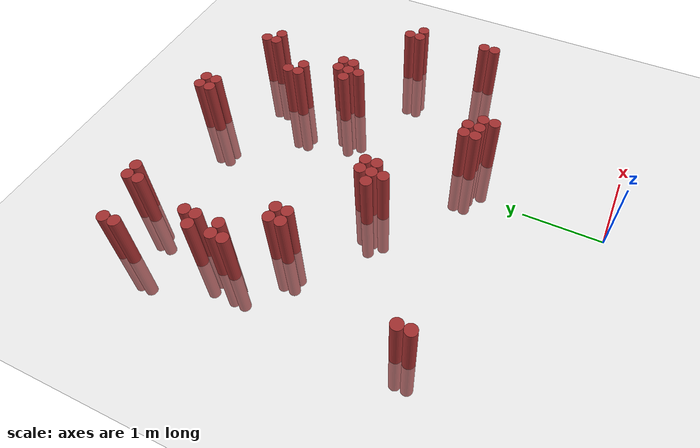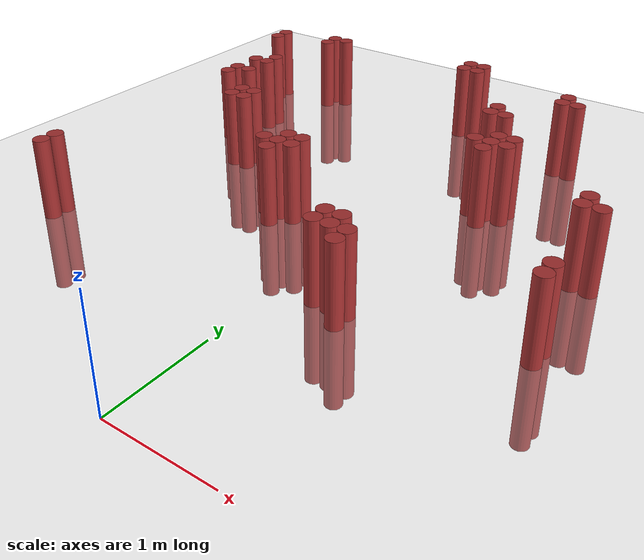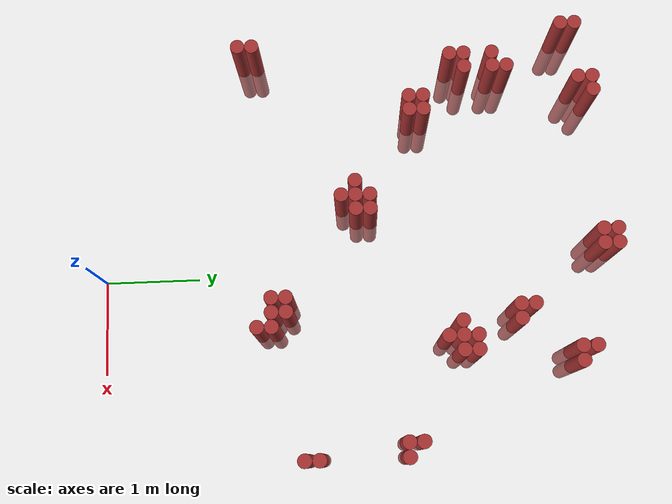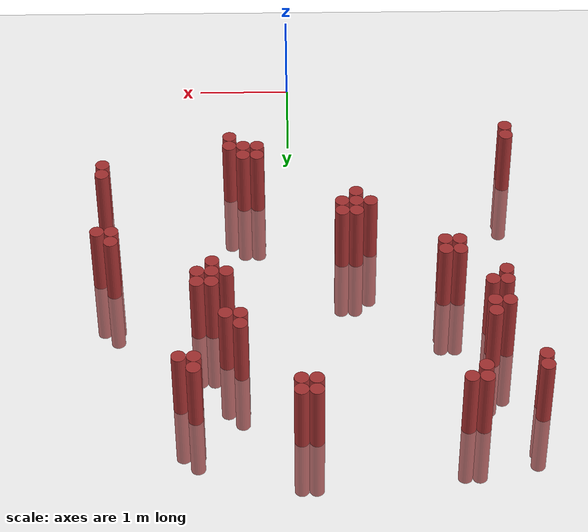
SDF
<sdf version="1.6">
 <world name="default">
  <model name="ground_plane">
   <static>1</static>
   <link name="link">
    <collision name="collision">
     <geometry><plane><normal>0 0 1</normal><size>100 100</size></plane></geometry>
     <surface><friction><ode><mu>100</mu><mu2>50</mu2></ode></friction></surface>
    </collision>
    <visual name="visual">
     <cast_shadows>0</cast_shadows>
     <geometry><plane><normal>0 0 1</normal><size>100 100</size></plane></geometry>
     <material>
      <script><uri>file://media/materials/scripts/gazebo.material</uri><name>Gazebo/Grey</name></script>
     </material>
    </visual>
   </link>
  </model>
  <model name="unit_cylinder_322">
   <static>1</static>
   <pose>-2.525000 4.975000 0.000000 0.000000 0.000000 0.000000</pose>
   <link name="link">
    <inertial>
     <mass>1</mass>
     <inertia><ixx>0.145833</ixx><ixy>0</ixy><ixz>0</ixz><iyy>0.145833</iyy><iyz>0</iyz><izz>0.125</izz></inertia>
    </inertial>
    <collision name="collision">
     <geometry><cylinder><radius>0.075000</radius><length>1.5</length></cylinder></geometry>
    </collision>
    <visual name="visual">
     <geometry><cylinder><radius>0.075000</radius><length>1.5</length></cylinder></geometry>
     <material>
      <ambient>0.648000 0.192000 0.192000 1</ambient>
      <diffuse>0.648000 0.192000 0.192000 1</diffuse>
     </material>
     <material>
      <script><name>Gazebo/Grey</name><uri>file://media/materials/scripts/gazebo.material</uri></script>
     </material>
    </visual>
   </link>
  </model>
  <model name="unit_cylinder_323">
   <static>1</static>
   <pose>-2.525000 5.125000 0.000000 0.000000 0.000000 0.000000</pose>
   <link name="link">
    <inertial>
     <mass>1</mass>
     <inertia><ixx>0.145833</ixx><ixy>0</ixy><ixz>0</ixz><iyy>0.145833</iyy><iyz>0</iyz><izz>0.125</izz></inertia>
    </inertial>
    <collision name="collision">
     <geometry><cylinder><radius>0.075000</radius><length>1.5</length></cylinder></geometry>
    </collision>
    <visual name="visual">
     <geometry><cylinder><radius>0.075000</radius><length>1.5</length></cylinder></geometry>
     <material>
      <ambient>0.648000 0.192000 0.192000 1</ambient>
      <diffuse>0.648000 0.192000 0.192000 1</diffuse>
     </material>
     <material>
      <script><name>Gazebo/Grey</name><uri>file://media/materials/scripts/gazebo.material</uri></script>
     </material>
    </visual>
   </link>
  </model>
  <model name="unit_cylinder_329">
   <static>1</static>
   <pose>-2.375000 1.525000 0.000000 0.000000 0.000000 0.000000</pose>
   <link name="link">
    <inertial>
     <mass>1</mass>
     <inertia><ixx>0.145833</ixx><ixy>0</ixy><ixz>0</ixz><iyy>0.145833</iyy><iyz>0</iyz><izz>0.125</izz></inertia>
    </inertial>
    <collision name="collision">
     <geometry><cylinder><radius>0.075000</radius><length>1.5</length></cylinder></geometry>
    </collision>
    <visual name="visual">
     <geometry><cylinder><radius>0.075000</radius><length>1.5</length></cylinder></geometry>
     <material>
      <ambient>0.648000 0.192000 0.192000 1</ambient>
      <diffuse>0.648000 0.192000 0.192000 1</diffuse>
     </material>
     <material>
      <script><name>Gazebo/Grey</name><uri>file://media/materials/scripts/gazebo.material</uri></script>
     </material>
    </visual>
   </link>
  </model>
  <model name="unit_cylinder_330">
   <static>1</static>
   <pose>-2.375000 1.675000 0.000000 0.000000 0.000000 0.000000</pose>
   <link name="link">
    <inertial>
     <mass>1</mass>
     <inertia><ixx>0.145833</ixx><ixy>0</ixy><ixz>0</ixz><iyy>0.145833</iyy><iyz>0</iyz><izz>0.125</izz></inertia>
    </inertial>
    <collision name="collision">
     <geometry><cylinder><radius>0.075000</radius><length>1.5</length></cylinder></geometry>
    </collision>
    <visual name="visual">
     <geometry><cylinder><radius>0.075000</radius><length>1.5</length></cylinder></geometry>
     <material>
      <ambient>0.648000 0.192000 0.192000 1</ambient>
      <diffuse>0.648000 0.192000 0.192000 1</diffuse>
     </material>
     <material>
      <script><name>Gazebo/Grey</name><uri>file://media/materials/scripts/gazebo.material</uri></script>
     </material>
    </visual>
   </link>
  </model>
  <model name="unit_cylinder_332">
   <static>1</static>
   <pose>-2.225000 3.775000 0.000000 0.000000 0.000000 0.000000</pose>
   <link name="link">
    <inertial>
     <mass>1</mass>
     <inertia><ixx>0.145833</ixx><ixy>0</ixy><ixz>0</ixz><iyy>0.145833</iyy><iyz>0</iyz><izz>0.125</izz></inertia>
    </inertial>
    <collision name="collision">
     <geometry><cylinder><radius>0.075000</radius><length>1.5</length></cylinder></geometry>
    </collision>
    <visual name="visual">
     <geometry><cylinder><radius>0.075000</radius><length>1.5</length></cylinder></geometry>
     <material>
      <ambient>0.648000 0.192000 0.192000 1</ambient>
      <diffuse>0.648000 0.192000 0.192000 1</diffuse>
     </material>
     <material>
      <script><name>Gazebo/Grey</name><uri>file://media/materials/scripts/gazebo.material</uri></script>
     </material>
    </visual>
   </link>
  </model>
  <model name="unit_cylinder_333">
   <static>1</static>
   <pose>-2.225000 3.925000 0.000000 0.000000 0.000000 0.000000</pose>
   <link name="link">
    <inertial>
     <mass>1</mass>
     <inertia><ixx>0.145833</ixx><ixy>0</ixy><ixz>0</ixz><iyy>0.145833</iyy><iyz>0</iyz><izz>0.125</izz></inertia>
    </inertial>
    <collision name="collision">
     <geometry><cylinder><radius>0.075000</radius><length>1.5</length></cylinder></geometry>
    </collision>
    <visual name="visual">
     <geometry><cylinder><radius>0.075000</radius><length>1.5</length></cylinder></geometry>
     <material>
      <ambient>0.648000 0.192000 0.192000 1</ambient>
      <diffuse>0.648000 0.192000 0.192000 1</diffuse>
     </material>
     <material>
      <script><name>Gazebo/Grey</name><uri>file://media/materials/scripts/gazebo.material</uri></script>
     </material>
    </visual>
   </link>
  </model>
  <model name="unit_cylinder_334">
   <static>1</static>
   <pose>-2.225000 4.225000 0.000000 0.000000 0.000000 0.000000</pose>
   <link name="link">
    <inertial>
     <mass>1</mass>
     <inertia><ixx>0.145833</ixx><ixy>0</ixy><ixz>0</ixz><iyy>0.145833</iyy><iyz>0</iyz><izz>0.125</izz></inertia>
    </inertial>
    <collision name="collision">
     <geometry><cylinder><radius>0.075000</radius><length>1.5</length></cylinder></geometry>
    </collision>
    <visual name="visual">
     <geometry><cylinder><radius>0.075000</radius><length>1.5</length></cylinder></geometry>
     <material>
      <ambient>0.648000 0.192000 0.192000 1</ambient>
      <diffuse>0.648000 0.192000 0.192000 1</diffuse>
     </material>
     <material>
      <script><name>Gazebo/Grey</name><uri>file://media/materials/scripts/gazebo.material</uri></script>
     </material>
    </visual>
   </link>
  </model>
  <model name="unit_cylinder_339">
   <static>1</static>
   <pose>-2.075000 3.925000 0.000000 0.000000 0.000000 0.000000</pose>
   <link name="link">
    <inertial>
     <mass>1</mass>
     <inertia><ixx>0.145833</ixx><ixy>0</ixy><ixz>0</ixz><iyy>0.145833</iyy><iyz>0</iyz><izz>0.125</izz></inertia>
    </inertial>
    <collision name="collision">
     <geometry><cylinder><radius>0.075000</radius><length>1.5</length></cylinder></geometry>
    </collision>
    <visual name="visual">
     <geometry><cylinder><radius>0.075000</radius><length>1.5</length></cylinder></geometry>
     <material>
      <ambient>0.648000 0.192000 0.192000 1</ambient>
      <diffuse>0.648000 0.192000 0.192000 1</diffuse>
     </material>
     <material>
      <script><name>Gazebo/Grey</name><uri>file://media/materials/scripts/gazebo.material</uri></script>
     </material>
    </visual>
   </link>
  </model>
  <model name="unit_cylinder_340">
   <static>1</static>
   <pose>-2.075000 4.225000 0.000000 0.000000 0.000000 0.000000</pose>
   <link name="link">
    <inertial>
     <mass>1</mass>
     <inertia><ixx>0.145833</ixx><ixy>0</ixy><ixz>0</ixz><iyy>0.145833</iyy><iyz>0</iyz><izz>0.125</izz></inertia>
    </inertial>
    <collision name="collision">
     <geometry><cylinder><radius>0.075000</radius><length>1.5</length></cylinder></geometry>
    </collision>
    <visual name="visual">
     <geometry><cylinder><radius>0.075000</radius><length>1.5</length></cylinder></geometry>
     <material>
      <ambient>0.648000 0.192000 0.192000 1</ambient>
      <diffuse>0.648000 0.192000 0.192000 1</diffuse>
     </material>
     <material>
      <script><name>Gazebo/Grey</name><uri>file://media/materials/scripts/gazebo.material</uri></script>
     </material>
    </visual>
   </link>
  </model>
  <model name="unit_cylinder_341">
   <static>1</static>
   <pose>-2.075000 4.375000 0.000000 0.000000 0.000000 0.000000</pose>
   <link name="link">
    <inertial>
     <mass>1</mass>
     <inertia><ixx>0.145833</ixx><ixy>0</ixy><ixz>0</ixz><iyy>0.145833</iyy><iyz>0</iyz><izz>0.125</izz></inertia>
    </inertial>
    <collision name="collision">
     <geometry><cylinder><radius>0.075000</radius><length>1.5</length></cylinder></geometry>
    </collision>
    <visual name="visual">
     <geometry><cylinder><radius>0.075000</radius><length>1.5</length></cylinder></geometry>
     <material>
      <ambient>0.648000 0.192000 0.192000 1</ambient>
      <diffuse>0.648000 0.192000 0.192000 1</diffuse>
     </material>
     <material>
      <script><name>Gazebo/Grey</name><uri>file://media/materials/scripts/gazebo.material</uri></script>
     </material>
    </visual>
   </link>
  </model>
  <model name="unit_cylinder_344">
   <static>1</static>
   <pose>-1.925000 5.125000 0.000000 0.000000 0.000000 0.000000</pose>
   <link name="link">
    <inertial>
     <mass>1</mass>
     <inertia><ixx>0.145833</ixx><ixy>0</ixy><ixz>0</ixz><iyy>0.145833</iyy><iyz>0</iyz><izz>0.125</izz></inertia>
    </inertial>
    <collision name="collision">
     <geometry><cylinder><radius>0.075000</radius><length>1.5</length></cylinder></geometry>
    </collision>
    <visual name="visual">
     <geometry><cylinder><radius>0.075000</radius><length>1.5</length></cylinder></geometry>
     <material>
      <ambient>0.648000 0.192000 0.192000 1</ambient>
      <diffuse>0.648000 0.192000 0.192000 1</diffuse>
     </material>
     <material>
      <script><name>Gazebo/Grey</name><uri>file://media/materials/scripts/gazebo.material</uri></script>
     </material>
    </visual>
   </link>
  </model>
  <model name="unit_cylinder_345">
   <static>1</static>
   <pose>-1.925000 5.275000 0.000000 0.000000 0.000000 0.000000</pose>
   <link name="link">
    <inertial>
     <mass>1</mass>
     <inertia><ixx>0.145833</ixx><ixy>0</ixy><ixz>0</ixz><iyy>0.145833</iyy><iyz>0</iyz><izz>0.125</izz></inertia>
    </inertial>
    <collision name="collision">
     <geometry><cylinder><radius>0.075000</radius><length>1.5</length></cylinder></geometry>
    </collision>
    <visual name="visual">
     <geometry><cylinder><radius>0.075000</radius><length>1.5</length></cylinder></geometry>
     <material>
      <ambient>0.648000 0.192000 0.192000 1</ambient>
      <diffuse>0.648000 0.192000 0.192000 1</diffuse>
     </material>
     <material>
      <script><name>Gazebo/Grey</name><uri>file://media/materials/scripts/gazebo.material</uri></script>
     </material>
    </visual>
   </link>
  </model>
  <model name="unit_cylinder_348">
   <static>1</static>
   <pose>-1.775000 3.325000 0.000000 0.000000 0.000000 0.000000</pose>
   <link name="link">
    <inertial>
     <mass>1</mass>
     <inertia><ixx>0.145833</ixx><ixy>0</ixy><ixz>0</ixz><iyy>0.145833</iyy><iyz>0</iyz><izz>0.125</izz></inertia>
    </inertial>
    <collision name="collision">
     <geometry><cylinder><radius>0.075000</radius><length>1.5</length></cylinder></geometry>
    </collision>
    <visual name="visual">
     <geometry><cylinder><radius>0.075000</radius><length>1.5</length></cylinder></geometry>
     <material>
      <ambient>0.648000 0.192000 0.192000 1</ambient>
      <diffuse>0.648000 0.192000 0.192000 1</diffuse>
     </material>
     <material>
      <script><name>Gazebo/Grey</name><uri>file://media/materials/scripts/gazebo.material</uri></script>
     </material>
    </visual>
   </link>
  </model>
  <model name="unit_cylinder_349">
   <static>1</static>
   <pose>-1.775000 3.475000 0.000000 0.000000 0.000000 0.000000</pose>
   <link name="link">
    <inertial>
     <mass>1</mass>
     <inertia><ixx>0.145833</ixx><ixy>0</ixy><ixz>0</ixz><iyy>0.145833</iyy><iyz>0</iyz><izz>0.125</izz></inertia>
    </inertial>
    <collision name="collision">
     <geometry><cylinder><radius>0.075000</radius><length>1.5</length></cylinder></geometry>
    </collision>
    <visual name="visual">
     <geometry><cylinder><radius>0.075000</radius><length>1.5</length></cylinder></geometry>
     <material>
      <ambient>0.648000 0.192000 0.192000 1</ambient>
      <diffuse>0.648000 0.192000 0.192000 1</diffuse>
     </material>
     <material>
      <script><name>Gazebo/Grey</name><uri>file://media/materials/scripts/gazebo.material</uri></script>
     </material>
    </visual>
   </link>
  </model>
  <model name="unit_cylinder_350">
   <static>1</static>
   <pose>-1.775000 5.275000 0.000000 0.000000 0.000000 0.000000</pose>
   <link name="link">
    <inertial>
     <mass>1</mass>
     <inertia><ixx>0.145833</ixx><ixy>0</ixy><ixz>0</ixz><iyy>0.145833</iyy><iyz>0</iyz><izz>0.125</izz></inertia>
    </inertial>
    <collision name="collision">
     <geometry><cylinder><radius>0.075000</radius><length>1.5</length></cylinder></geometry>
    </collision>
    <visual name="visual">
     <geometry><cylinder><radius>0.075000</radius><length>1.5</length></cylinder></geometry>
     <material>
      <ambient>0.648000 0.192000 0.192000 1</ambient>
      <diffuse>0.648000 0.192000 0.192000 1</diffuse>
     </material>
     <material>
      <script><name>Gazebo/Grey</name><uri>file://media/materials/scripts/gazebo.material</uri></script>
     </material>
    </visual>
   </link>
  </model>
  <model name="unit_cylinder_351">
   <static>1</static>
   <pose>-1.625000 3.325000 0.000000 0.000000 0.000000 0.000000</pose>
   <link name="link">
    <inertial>
     <mass>1</mass>
     <inertia><ixx>0.145833</ixx><ixy>0</ixy><ixz>0</ixz><iyy>0.145833</iyy><iyz>0</iyz><izz>0.125</izz></inertia>
    </inertial>
    <collision name="collision">
     <geometry><cylinder><radius>0.075000</radius><length>1.5</length></cylinder></geometry>
    </collision>
    <visual name="visual">
     <geometry><cylinder><radius>0.075000</radius><length>1.5</length></cylinder></geometry>
     <material>
      <ambient>0.648000 0.192000 0.192000 1</ambient>
      <diffuse>0.648000 0.192000 0.192000 1</diffuse>
     </material>
     <material>
      <script><name>Gazebo/Grey</name><uri>file://media/materials/scripts/gazebo.material</uri></script>
     </material>
    </visual>
   </link>
  </model>
  <model name="unit_cylinder_352">
   <static>1</static>
   <pose>-1.625000 3.475000 0.000000 0.000000 0.000000 0.000000</pose>
   <link name="link">
    <inertial>
     <mass>1</mass>
     <inertia><ixx>0.145833</ixx><ixy>0</ixy><ixz>0</ixz><iyy>0.145833</iyy><iyz>0</iyz><izz>0.125</izz></inertia>
    </inertial>
    <collision name="collision">
     <geometry><cylinder><radius>0.075000</radius><length>1.5</length></cylinder></geometry>
    </collision>
    <visual name="visual">
     <geometry><cylinder><radius>0.075000</radius><length>1.5</length></cylinder></geometry>
     <material>
      <ambient>0.648000 0.192000 0.192000 1</ambient>
      <diffuse>0.648000 0.192000 0.192000 1</diffuse>
     </material>
     <material>
      <script><name>Gazebo/Grey</name><uri>file://media/materials/scripts/gazebo.material</uri></script>
     </material>
    </visual>
   </link>
  </model>
  <model name="unit_cylinder_353">
   <static>1</static>
   <pose>-0.875000 2.725000 0.000000 0.000000 0.000000 0.000000</pose>
   <link name="link">
    <inertial>
     <mass>1</mass>
     <inertia><ixx>0.145833</ixx><ixy>0</ixy><ixz>0</ixz><iyy>0.145833</iyy><iyz>0</iyz><izz>0.125</izz></inertia>
    </inertial>
    <collision name="collision">
     <geometry><cylinder><radius>0.075000</radius><length>1.5</length></cylinder></geometry>
    </collision>
    <visual name="visual">
     <geometry><cylinder><radius>0.075000</radius><length>1.5</length></cylinder></geometry>
     <material>
      <ambient>0.648000 0.192000 0.192000 1</ambient>
      <diffuse>0.648000 0.192000 0.192000 1</diffuse>
     </material>
     <material>
      <script><name>Gazebo/Grey</name><uri>file://media/materials/scripts/gazebo.material</uri></script>
     </material>
    </visual>
   </link>
  </model>
  <model name="unit_cylinder_354">
   <static>1</static>
   <pose>-0.725000 2.575000 0.000000 0.000000 0.000000 0.000000</pose>
   <link name="link">
    <inertial>
     <mass>1</mass>
     <inertia><ixx>0.145833</ixx><ixy>0</ixy><ixz>0</ixz><iyy>0.145833</iyy><iyz>0</iyz><izz>0.125</izz></inertia>
    </inertial>
    <collision name="collision">
     <geometry><cylinder><radius>0.075000</radius><length>1.5</length></cylinder></geometry>
    </collision>
    <visual name="visual">
     <geometry><cylinder><radius>0.075000</radius><length>1.5</length></cylinder></geometry>
     <material>
      <ambient>0.648000 0.192000 0.192000 1</ambient>
      <diffuse>0.648000 0.192000 0.192000 1</diffuse>
     </material>
     <material>
      <script><name>Gazebo/Grey</name><uri>file://media/materials/scripts/gazebo.material</uri></script>
     </material>
    </visual>
   </link>
  </model>
  <model name="unit_cylinder_355">
   <static>1</static>
   <pose>-0.725000 2.725000 0.000000 0.000000 0.000000 0.000000</pose>
   <link name="link">
    <inertial>
     <mass>1</mass>
     <inertia><ixx>0.145833</ixx><ixy>0</ixy><ixz>0</ixz><iyy>0.145833</iyy><iyz>0</iyz><izz>0.125</izz></inertia>
    </inertial>
    <collision name="collision">
     <geometry><cylinder><radius>0.075000</radius><length>1.5</length></cylinder></geometry>
    </collision>
    <visual name="visual">
     <geometry><cylinder><radius>0.075000</radius><length>1.5</length></cylinder></geometry>
     <material>
      <ambient>0.648000 0.192000 0.192000 1</ambient>
      <diffuse>0.648000 0.192000 0.192000 1</diffuse>
     </material>
     <material>
      <script><name>Gazebo/Grey</name><uri>file://media/materials/scripts/gazebo.material</uri></script>
     </material>
    </visual>
   </link>
  </model>
  <model name="unit_cylinder_356">
   <static>1</static>
   <pose>-0.725000 2.875000 0.000000 0.000000 0.000000 0.000000</pose>
   <link name="link">
    <inertial>
     <mass>1</mass>
     <inertia><ixx>0.145833</ixx><ixy>0</ixy><ixz>0</ixz><iyy>0.145833</iyy><iyz>0</iyz><izz>0.125</izz></inertia>
    </inertial>
    <collision name="collision">
     <geometry><cylinder><radius>0.075000</radius><length>1.5</length></cylinder></geometry>
    </collision>
    <visual name="visual">
     <geometry><cylinder><radius>0.075000</radius><length>1.5</length></cylinder></geometry>
     <material>
      <ambient>0.648000 0.192000 0.192000 1</ambient>
      <diffuse>0.648000 0.192000 0.192000 1</diffuse>
     </material>
     <material>
      <script><name>Gazebo/Grey</name><uri>file://media/materials/scripts/gazebo.material</uri></script>
     </material>
    </visual>
   </link>
  </model>
  <model name="unit_cylinder_357">
   <static>1</static>
   <pose>-0.575000 2.725000 0.000000 0.000000 0.000000 0.000000</pose>
   <link name="link">
    <inertial>
     <mass>1</mass>
     <inertia><ixx>0.145833</ixx><ixy>0</ixy><ixz>0</ixz><iyy>0.145833</iyy><iyz>0</iyz><izz>0.125</izz></inertia>
    </inertial>
    <collision name="collision">
     <geometry><cylinder><radius>0.075000</radius><length>1.5</length></cylinder></geometry>
    </collision>
    <visual name="visual">
     <geometry><cylinder><radius>0.075000</radius><length>1.5</length></cylinder></geometry>
     <material>
      <ambient>0.648000 0.192000 0.192000 1</ambient>
      <diffuse>0.648000 0.192000 0.192000 1</diffuse>
     </material>
     <material>
      <script><name>Gazebo/Grey</name><uri>file://media/materials/scripts/gazebo.material</uri></script>
     </material>
    </visual>
   </link>
  </model>
  <model name="unit_cylinder_358">
   <static>1</static>
   <pose>-0.575000 2.875000 0.000000 0.000000 0.000000 0.000000</pose>
   <link name="link">
    <inertial>
     <mass>1</mass>
     <inertia><ixx>0.145833</ixx><ixy>0</ixy><ixz>0</ixz><iyy>0.145833</iyy><iyz>0</iyz><izz>0.125</izz></inertia>
    </inertial>
    <collision name="collision">
     <geometry><cylinder><radius>0.075000</radius><length>1.5</length></cylinder></geometry>
    </collision>
    <visual name="visual">
     <geometry><cylinder><radius>0.075000</radius><length>1.5</length></cylinder></geometry>
     <material>
      <ambient>0.648000 0.192000 0.192000 1</ambient>
      <diffuse>0.648000 0.192000 0.192000 1</diffuse>
     </material>
     <material>
      <script><name>Gazebo/Grey</name><uri>file://media/materials/scripts/gazebo.material</uri></script>
     </material>
    </visual>
   </link>
  </model>
  <model name="unit_cylinder_360">
   <static>1</static>
   <pose>-0.275000 5.275000 0.000000 0.000000 0.000000 0.000000</pose>
   <link name="link">
    <inertial>
     <mass>1</mass>
     <inertia><ixx>0.145833</ixx><ixy>0</ixy><ixz>0</ixz><iyy>0.145833</iyy><iyz>0</iyz><izz>0.125</izz></inertia>
    </inertial>
    <collision name="collision">
     <geometry><cylinder><radius>0.075000</radius><length>1.5</length></cylinder></geometry>
    </collision>
    <visual name="visual">
     <geometry><cylinder><radius>0.075000</radius><length>1.5</length></cylinder></geometry>
     <material>
      <ambient>0.648000 0.192000 0.192000 1</ambient>
      <diffuse>0.648000 0.192000 0.192000 1</diffuse>
     </material>
     <material>
      <script><name>Gazebo/Grey</name><uri>file://media/materials/scripts/gazebo.material</uri></script>
     </material>
    </visual>
   </link>
  </model>
  <model name="unit_cylinder_361">
   <static>1</static>
   <pose>-0.275000 5.425000 0.000000 0.000000 0.000000 0.000000</pose>
   <link name="link">
    <inertial>
     <mass>1</mass>
     <inertia><ixx>0.145833</ixx><ixy>0</ixy><ixz>0</ixz><iyy>0.145833</iyy><iyz>0</iyz><izz>0.125</izz></inertia>
    </inertial>
    <collision name="collision">
     <geometry><cylinder><radius>0.075000</radius><length>1.5</length></cylinder></geometry>
    </collision>
    <visual name="visual">
     <geometry><cylinder><radius>0.075000</radius><length>1.5</length></cylinder></geometry>
     <material>
      <ambient>0.648000 0.192000 0.192000 1</ambient>
      <diffuse>0.648000 0.192000 0.192000 1</diffuse>
     </material>
     <material>
      <script><name>Gazebo/Grey</name><uri>file://media/materials/scripts/gazebo.material</uri></script>
     </material>
    </visual>
   </link>
  </model>
  <model name="unit_cylinder_364">
   <static>1</static>
   <pose>-0.125000 5.275000 0.000000 0.000000 0.000000 0.000000</pose>
   <link name="link">
    <inertial>
     <mass>1</mass>
     <inertia><ixx>0.145833</ixx><ixy>0</ixy><ixz>0</ixz><iyy>0.145833</iyy><iyz>0</iyz><izz>0.125</izz></inertia>
    </inertial>
    <collision name="collision">
     <geometry><cylinder><radius>0.075000</radius><length>1.5</length></cylinder></geometry>
    </collision>
    <visual name="visual">
     <geometry><cylinder><radius>0.075000</radius><length>1.5</length></cylinder></geometry>
     <material>
      <ambient>0.648000 0.192000 0.192000 1</ambient>
      <diffuse>0.648000 0.192000 0.192000 1</diffuse>
     </material>
     <material>
      <script><name>Gazebo/Grey</name><uri>file://media/materials/scripts/gazebo.material</uri></script>
     </material>
    </visual>
   </link>
  </model>
  <model name="unit_cylinder_365">
   <static>1</static>
   <pose>-0.125000 5.425000 0.000000 0.000000 0.000000 0.000000</pose>
   <link name="link">
    <inertial>
     <mass>1</mass>
     <inertia><ixx>0.145833</ixx><ixy>0</ixy><ixz>0</ixz><iyy>0.145833</iyy><iyz>0</iyz><izz>0.125</izz></inertia>
    </inertial>
    <collision name="collision">
     <geometry><cylinder><radius>0.075000</radius><length>1.5</length></cylinder></geometry>
    </collision>
    <visual name="visual">
     <geometry><cylinder><radius>0.075000</radius><length>1.5</length></cylinder></geometry>
     <material>
      <ambient>0.648000 0.192000 0.192000 1</ambient>
      <diffuse>0.648000 0.192000 0.192000 1</diffuse>
     </material>
     <material>
      <script><name>Gazebo/Grey</name><uri>file://media/materials/scripts/gazebo.material</uri></script>
     </material>
    </visual>
   </link>
  </model>
  <model name="unit_cylinder_367">
   <static>1</static>
   <pose>0.325000 1.825000 0.000000 0.000000 0.000000 0.000000</pose>
   <link name="link">
    <inertial>
     <mass>1</mass>
     <inertia><ixx>0.145833</ixx><ixy>0</ixy><ixz>0</ixz><iyy>0.145833</iyy><iyz>0</iyz><izz>0.125</izz></inertia>
    </inertial>
    <collision name="collision">
     <geometry><cylinder><radius>0.075000</radius><length>1.5</length></cylinder></geometry>
    </collision>
    <visual name="visual">
     <geometry><cylinder><radius>0.075000</radius><length>1.5</length></cylinder></geometry>
     <material>
      <ambient>0.648000 0.192000 0.192000 1</ambient>
      <diffuse>0.648000 0.192000 0.192000 1</diffuse>
     </material>
     <material>
      <script><name>Gazebo/Grey</name><uri>file://media/materials/scripts/gazebo.material</uri></script>
     </material>
    </visual>
   </link>
  </model>
  <model name="unit_cylinder_368">
   <static>1</static>
   <pose>0.325000 1.975000 0.000000 0.000000 0.000000 0.000000</pose>
   <link name="link">
    <inertial>
     <mass>1</mass>
     <inertia><ixx>0.145833</ixx><ixy>0</ixy><ixz>0</ixz><iyy>0.145833</iyy><iyz>0</iyz><izz>0.125</izz></inertia>
    </inertial>
    <collision name="collision">
     <geometry><cylinder><radius>0.075000</radius><length>1.5</length></cylinder></geometry>
    </collision>
    <visual name="visual">
     <geometry><cylinder><radius>0.075000</radius><length>1.5</length></cylinder></geometry>
     <material>
      <ambient>0.648000 0.192000 0.192000 1</ambient>
      <diffuse>0.648000 0.192000 0.192000 1</diffuse>
     </material>
     <material>
      <script><name>Gazebo/Grey</name><uri>file://media/materials/scripts/gazebo.material</uri></script>
     </material>
    </visual>
   </link>
  </model>
  <model name="unit_cylinder_369">
   <static>1</static>
   <pose>0.475000 1.825000 0.000000 0.000000 0.000000 0.000000</pose>
   <link name="link">
    <inertial>
     <mass>1</mass>
     <inertia><ixx>0.145833</ixx><ixy>0</ixy><ixz>0</ixz><iyy>0.145833</iyy><iyz>0</iyz><izz>0.125</izz></inertia>
    </inertial>
    <collision name="collision">
     <geometry><cylinder><radius>0.075000</radius><length>1.5</length></cylinder></geometry>
    </collision>
    <visual name="visual">
     <geometry><cylinder><radius>0.075000</radius><length>1.5</length></cylinder></geometry>
     <material>
      <ambient>0.648000 0.192000 0.192000 1</ambient>
      <diffuse>0.648000 0.192000 0.192000 1</diffuse>
     </material>
     <material>
      <script><name>Gazebo/Grey</name><uri>file://media/materials/scripts/gazebo.material</uri></script>
     </material>
    </visual>
   </link>
  </model>
  <model name="unit_cylinder_370">
   <static>1</static>
   <pose>0.475000 1.975000 0.000000 0.000000 0.000000 0.000000</pose>
   <link name="link">
    <inertial>
     <mass>1</mass>
     <inertia><ixx>0.145833</ixx><ixy>0</ixy><ixz>0</ixz><iyy>0.145833</iyy><iyz>0</iyz><izz>0.125</izz></inertia>
    </inertial>
    <collision name="collision">
     <geometry><cylinder><radius>0.075000</radius><length>1.5</length></cylinder></geometry>
    </collision>
    <visual name="visual">
     <geometry><cylinder><radius>0.075000</radius><length>1.5</length></cylinder></geometry>
     <material>
      <ambient>0.648000 0.192000 0.192000 1</ambient>
      <diffuse>0.648000 0.192000 0.192000 1</diffuse>
     </material>
     <material>
      <script><name>Gazebo/Grey</name><uri>file://media/materials/scripts/gazebo.material</uri></script>
     </material>
    </visual>
   </link>
  </model>
  <model name="unit_cylinder_371">
   <static>1</static>
   <pose>0.475000 4.375000 0.000000 0.000000 0.000000 0.000000</pose>
   <link name="link">
    <inertial>
     <mass>1</mass>
     <inertia><ixx>0.145833</ixx><ixy>0</ixy><ixz>0</ixz><iyy>0.145833</iyy><iyz>0</iyz><izz>0.125</izz></inertia>
    </inertial>
    <collision name="collision">
     <geometry><cylinder><radius>0.075000</radius><length>1.5</length></cylinder></geometry>
    </collision>
    <visual name="visual">
     <geometry><cylinder><radius>0.075000</radius><length>1.5</length></cylinder></geometry>
     <material>
      <ambient>0.648000 0.192000 0.192000 1</ambient>
      <diffuse>0.648000 0.192000 0.192000 1</diffuse>
     </material>
     <material>
      <script><name>Gazebo/Grey</name><uri>file://media/materials/scripts/gazebo.material</uri></script>
     </material>
    </visual>
   </link>
  </model>
  <model name="unit_cylinder_372">
   <static>1</static>
   <pose>0.475000 4.525000 0.000000 0.000000 0.000000 0.000000</pose>
   <link name="link">
    <inertial>
     <mass>1</mass>
     <inertia><ixx>0.145833</ixx><ixy>0</ixy><ixz>0</ixz><iyy>0.145833</iyy><iyz>0</iyz><izz>0.125</izz></inertia>
    </inertial>
    <collision name="collision">
     <geometry><cylinder><radius>0.075000</radius><length>1.5</length></cylinder></geometry>
    </collision>
    <visual name="visual">
     <geometry><cylinder><radius>0.075000</radius><length>1.5</length></cylinder></geometry>
     <material>
      <ambient>0.648000 0.192000 0.192000 1</ambient>
      <diffuse>0.648000 0.192000 0.192000 1</diffuse>
     </material>
     <material>
      <script><name>Gazebo/Grey</name><uri>file://media/materials/scripts/gazebo.material</uri></script>
     </material>
    </visual>
   </link>
  </model>
  <model name="unit_cylinder_373">
   <static>1</static>
   <pose>0.625000 1.675000 0.000000 0.000000 0.000000 0.000000</pose>
   <link name="link">
    <inertial>
     <mass>1</mass>
     <inertia><ixx>0.145833</ixx><ixy>0</ixy><ixz>0</ixz><iyy>0.145833</iyy><iyz>0</iyz><izz>0.125</izz></inertia>
    </inertial>
    <collision name="collision">
     <geometry><cylinder><radius>0.075000</radius><length>1.5</length></cylinder></geometry>
    </collision>
    <visual name="visual">
     <geometry><cylinder><radius>0.075000</radius><length>1.5</length></cylinder></geometry>
     <material>
      <ambient>0.648000 0.192000 0.192000 1</ambient>
      <diffuse>0.648000 0.192000 0.192000 1</diffuse>
     </material>
     <material>
      <script><name>Gazebo/Grey</name><uri>file://media/materials/scripts/gazebo.material</uri></script>
     </material>
    </visual>
   </link>
  </model>
  <model name="unit_cylinder_374">
   <static>1</static>
   <pose>0.625000 1.825000 0.000000 0.000000 0.000000 0.000000</pose>
   <link name="link">
    <inertial>
     <mass>1</mass>
     <inertia><ixx>0.145833</ixx><ixy>0</ixy><ixz>0</ixz><iyy>0.145833</iyy><iyz>0</iyz><izz>0.125</izz></inertia>
    </inertial>
    <collision name="collision">
     <geometry><cylinder><radius>0.075000</radius><length>1.5</length></cylinder></geometry>
    </collision>
    <visual name="visual">
     <geometry><cylinder><radius>0.075000</radius><length>1.5</length></cylinder></geometry>
     <material>
      <ambient>0.648000 0.192000 0.192000 1</ambient>
      <diffuse>0.648000 0.192000 0.192000 1</diffuse>
     </material>
     <material>
      <script><name>Gazebo/Grey</name><uri>file://media/materials/scripts/gazebo.material</uri></script>
     </material>
    </visual>
   </link>
  </model>
  <model name="unit_cylinder_375">
   <static>1</static>
   <pose>0.625000 3.775000 0.000000 0.000000 0.000000 0.000000</pose>
   <link name="link">
    <inertial>
     <mass>1</mass>
     <inertia><ixx>0.145833</ixx><ixy>0</ixy><ixz>0</ixz><iyy>0.145833</iyy><iyz>0</iyz><izz>0.125</izz></inertia>
    </inertial>
    <collision name="collision">
     <geometry><cylinder><radius>0.075000</radius><length>1.5</length></cylinder></geometry>
    </collision>
    <visual name="visual">
     <geometry><cylinder><radius>0.075000</radius><length>1.5</length></cylinder></geometry>
     <material>
      <ambient>0.648000 0.192000 0.192000 1</ambient>
      <diffuse>0.648000 0.192000 0.192000 1</diffuse>
     </material>
     <material>
      <script><name>Gazebo/Grey</name><uri>file://media/materials/scripts/gazebo.material</uri></script>
     </material>
    </visual>
   </link>
  </model>
  <model name="unit_cylinder_376">
   <static>1</static>
   <pose>0.625000 4.375000 0.000000 0.000000 0.000000 0.000000</pose>
   <link name="link">
    <inertial>
     <mass>1</mass>
     <inertia><ixx>0.145833</ixx><ixy>0</ixy><ixz>0</ixz><iyy>0.145833</iyy><iyz>0</iyz><izz>0.125</izz></inertia>
    </inertial>
    <collision name="collision">
     <geometry><cylinder><radius>0.075000</radius><length>1.5</length></cylinder></geometry>
    </collision>
    <visual name="visual">
     <geometry><cylinder><radius>0.075000</radius><length>1.5</length></cylinder></geometry>
     <material>
      <ambient>0.648000 0.192000 0.192000 1</ambient>
      <diffuse>0.648000 0.192000 0.192000 1</diffuse>
     </material>
     <material>
      <script><name>Gazebo/Grey</name><uri>file://media/materials/scripts/gazebo.material</uri></script>
     </material>
    </visual>
   </link>
  </model>
  <model name="unit_cylinder_377">
   <static>1</static>
   <pose>0.775000 3.625000 0.000000 0.000000 0.000000 0.000000</pose>
   <link name="link">
    <inertial>
     <mass>1</mass>
     <inertia><ixx>0.145833</ixx><ixy>0</ixy><ixz>0</ixz><iyy>0.145833</iyy><iyz>0</iyz><izz>0.125</izz></inertia>
    </inertial>
    <collision name="collision">
     <geometry><cylinder><radius>0.075000</radius><length>1.5</length></cylinder></geometry>
    </collision>
    <visual name="visual">
     <geometry><cylinder><radius>0.075000</radius><length>1.5</length></cylinder></geometry>
     <material>
      <ambient>0.648000 0.192000 0.192000 1</ambient>
      <diffuse>0.648000 0.192000 0.192000 1</diffuse>
     </material>
     <material>
      <script><name>Gazebo/Grey</name><uri>file://media/materials/scripts/gazebo.material</uri></script>
     </material>
    </visual>
   </link>
  </model>
  <model name="unit_cylinder_378">
   <static>1</static>
   <pose>0.775000 3.775000 0.000000 0.000000 0.000000 0.000000</pose>
   <link name="link">
    <inertial>
     <mass>1</mass>
     <inertia><ixx>0.145833</ixx><ixy>0</ixy><ixz>0</ixz><iyy>0.145833</iyy><iyz>0</iyz><izz>0.125</izz></inertia>
    </inertial>
    <collision name="collision">
     <geometry><cylinder><radius>0.075000</radius><length>1.5</length></cylinder></geometry>
    </collision>
    <visual name="visual">
     <geometry><cylinder><radius>0.075000</radius><length>1.5</length></cylinder></geometry>
     <material>
      <ambient>0.648000 0.192000 0.192000 1</ambient>
      <diffuse>0.648000 0.192000 0.192000 1</diffuse>
     </material>
     <material>
      <script><name>Gazebo/Grey</name><uri>file://media/materials/scripts/gazebo.material</uri></script>
     </material>
    </visual>
   </link>
  </model>
  <model name="unit_cylinder_379">
   <static>1</static>
   <pose>0.775000 3.925000 0.000000 0.000000 0.000000 0.000000</pose>
   <link name="link">
    <inertial>
     <mass>1</mass>
     <inertia><ixx>0.145833</ixx><ixy>0</ixy><ixz>0</ixz><iyy>0.145833</iyy><iyz>0</iyz><izz>0.125</izz></inertia>
    </inertial>
    <collision name="collision">
     <geometry><cylinder><radius>0.075000</radius><length>1.5</length></cylinder></geometry>
    </collision>
    <visual name="visual">
     <geometry><cylinder><radius>0.075000</radius><length>1.5</length></cylinder></geometry>
     <material>
      <ambient>0.648000 0.192000 0.192000 1</ambient>
      <diffuse>0.648000 0.192000 0.192000 1</diffuse>
     </material>
     <material>
      <script><name>Gazebo/Grey</name><uri>file://media/materials/scripts/gazebo.material</uri></script>
     </material>
    </visual>
   </link>
  </model>
  <model name="unit_cylinder_380">
   <static>1</static>
   <pose>0.925000 3.775000 0.000000 0.000000 0.000000 0.000000</pose>
   <link name="link">
    <inertial>
     <mass>1</mass>
     <inertia><ixx>0.145833</ixx><ixy>0</ixy><ixz>0</ixz><iyy>0.145833</iyy><iyz>0</iyz><izz>0.125</izz></inertia>
    </inertial>
    <collision name="collision">
     <geometry><cylinder><radius>0.075000</radius><length>1.5</length></cylinder></geometry>
    </collision>
    <visual name="visual">
     <geometry><cylinder><radius>0.075000</radius><length>1.5</length></cylinder></geometry>
     <material>
      <ambient>0.648000 0.192000 0.192000 1</ambient>
      <diffuse>0.648000 0.192000 0.192000 1</diffuse>
     </material>
     <material>
      <script><name>Gazebo/Grey</name><uri>file://media/materials/scripts/gazebo.material</uri></script>
     </material>
    </visual>
   </link>
  </model>
  <model name="unit_cylinder_381">
   <static>1</static>
   <pose>0.925000 3.925000 0.000000 0.000000 0.000000 0.000000</pose>
   <link name="link">
    <inertial>
     <mass>1</mass>
     <inertia><ixx>0.145833</ixx><ixy>0</ixy><ixz>0</ixz><iyy>0.145833</iyy><iyz>0</iyz><izz>0.125</izz></inertia>
    </inertial>
    <collision name="collision">
     <geometry><cylinder><radius>0.075000</radius><length>1.5</length></cylinder></geometry>
    </collision>
    <visual name="visual">
     <geometry><cylinder><radius>0.075000</radius><length>1.5</length></cylinder></geometry>
     <material>
      <ambient>0.648000 0.192000 0.192000 1</ambient>
      <diffuse>0.648000 0.192000 0.192000 1</diffuse>
     </material>
     <material>
      <script><name>Gazebo/Grey</name><uri>file://media/materials/scripts/gazebo.material</uri></script>
     </material>
    </visual>
   </link>
  </model>
  <model name="unit_cylinder_382">
   <static>1</static>
   <pose>0.925000 4.975000 0.000000 0.000000 0.000000 0.000000</pose>
   <link name="link">
    <inertial>
     <mass>1</mass>
     <inertia><ixx>0.145833</ixx><ixy>0</ixy><ixz>0</ixz><iyy>0.145833</iyy><iyz>0</iyz><izz>0.125</izz></inertia>
    </inertial>
    <collision name="collision">
     <geometry><cylinder><radius>0.075000</radius><length>1.5</length></cylinder></geometry>
    </collision>
    <visual name="visual">
     <geometry><cylinder><radius>0.075000</radius><length>1.5</length></cylinder></geometry>
     <material>
      <ambient>0.648000 0.192000 0.192000 1</ambient>
      <diffuse>0.648000 0.192000 0.192000 1</diffuse>
     </material>
     <material>
      <script><name>Gazebo/Grey</name><uri>file://media/materials/scripts/gazebo.material</uri></script>
     </material>
    </visual>
   </link>
  </model>
  <model name="unit_cylinder_383">
   <static>1</static>
   <pose>0.925000 5.125000 0.000000 0.000000 0.000000 0.000000</pose>
   <link name="link">
    <inertial>
     <mass>1</mass>
     <inertia><ixx>0.145833</ixx><ixy>0</ixy><ixz>0</ixz><iyy>0.145833</iyy><iyz>0</iyz><izz>0.125</izz></inertia>
    </inertial>
    <collision name="collision">
     <geometry><cylinder><radius>0.075000</radius><length>1.5</length></cylinder></geometry>
    </collision>
    <visual name="visual">
     <geometry><cylinder><radius>0.075000</radius><length>1.5</length></cylinder></geometry>
     <material>
      <ambient>0.648000 0.192000 0.192000 1</ambient>
      <diffuse>0.648000 0.192000 0.192000 1</diffuse>
     </material>
     <material>
      <script><name>Gazebo/Grey</name><uri>file://media/materials/scripts/gazebo.material</uri></script>
     </material>
    </visual>
   </link>
  </model>
  <model name="unit_cylinder_384">
   <static>1</static>
   <pose>1.075000 4.975000 0.000000 0.000000 0.000000 0.000000</pose>
   <link name="link">
    <inertial>
     <mass>1</mass>
     <inertia><ixx>0.145833</ixx><ixy>0</ixy><ixz>0</ixz><iyy>0.145833</iyy><iyz>0</iyz><izz>0.125</izz></inertia>
    </inertial>
    <collision name="collision">
     <geometry><cylinder><radius>0.075000</radius><length>1.5</length></cylinder></geometry>
    </collision>
    <visual name="visual">
     <geometry><cylinder><radius>0.075000</radius><length>1.5</length></cylinder></geometry>
     <material>
      <ambient>0.648000 0.192000 0.192000 1</ambient>
      <diffuse>0.648000 0.192000 0.192000 1</diffuse>
     </material>
     <material>
      <script><name>Gazebo/Grey</name><uri>file://media/materials/scripts/gazebo.material</uri></script>
     </material>
    </visual>
   </link>
  </model>
  <model name="unit_cylinder_385">
   <static>1</static>
   <pose>1.825000 3.175000 0.000000 0.000000 0.000000 0.000000</pose>
   <link name="link">
    <inertial>
     <mass>1</mass>
     <inertia><ixx>0.145833</ixx><ixy>0</ixy><ixz>0</ixz><iyy>0.145833</iyy><iyz>0</iyz><izz>0.125</izz></inertia>
    </inertial>
    <collision name="collision">
     <geometry><cylinder><radius>0.075000</radius><length>1.5</length></cylinder></geometry>
    </collision>
    <visual name="visual">
     <geometry><cylinder><radius>0.075000</radius><length>1.5</length></cylinder></geometry>
     <material>
      <ambient>0.648000 0.192000 0.192000 1</ambient>
      <diffuse>0.648000 0.192000 0.192000 1</diffuse>
     </material>
     <material>
      <script><name>Gazebo/Grey</name><uri>file://media/materials/scripts/gazebo.material</uri></script>
     </material>
    </visual>
   </link>
  </model>
  <model name="unit_cylinder_386">
   <static>1</static>
   <pose>1.825000 3.325000 0.000000 0.000000 0.000000 0.000000</pose>
   <link name="link">
    <inertial>
     <mass>1</mass>
     <inertia><ixx>0.145833</ixx><ixy>0</ixy><ixz>0</ixz><iyy>0.145833</iyy><iyz>0</iyz><izz>0.125</izz></inertia>
    </inertial>
    <collision name="collision">
     <geometry><cylinder><radius>0.075000</radius><length>1.5</length></cylinder></geometry>
    </collision>
    <visual name="visual">
     <geometry><cylinder><radius>0.075000</radius><length>1.5</length></cylinder></geometry>
     <material>
      <ambient>0.648000 0.192000 0.192000 1</ambient>
      <diffuse>0.648000 0.192000 0.192000 1</diffuse>
     </material>
     <material>
      <script><name>Gazebo/Grey</name><uri>file://media/materials/scripts/gazebo.material</uri></script>
     </material>
    </visual>
   </link>
  </model>
  <model name="unit_cylinder_387">
   <static>1</static>
   <pose>1.975000 2.125000 0.000000 0.000000 0.000000 0.000000</pose>
   <link name="link">
    <inertial>
     <mass>1</mass>
     <inertia><ixx>0.145833</ixx><ixy>0</ixy><ixz>0</ixz><iyy>0.145833</iyy><iyz>0</iyz><izz>0.125</izz></inertia>
    </inertial>
    <collision name="collision">
     <geometry><cylinder><radius>0.075000</radius><length>1.5</length></cylinder></geometry>
    </collision>
    <visual name="visual">
     <geometry><cylinder><radius>0.075000</radius><length>1.5</length></cylinder></geometry>
     <material>
      <ambient>0.648000 0.192000 0.192000 1</ambient>
      <diffuse>0.648000 0.192000 0.192000 1</diffuse>
     </material>
     <material>
      <script><name>Gazebo/Grey</name><uri>file://media/materials/scripts/gazebo.material</uri></script>
     </material>
    </visual>
   </link>
  </model>
  <model name="unit_cylinder_388">
   <static>1</static>
   <pose>1.975000 2.275000 0.000000 0.000000 0.000000 0.000000</pose>
   <link name="link">
    <inertial>
     <mass>1</mass>
     <inertia><ixx>0.145833</ixx><ixy>0</ixy><ixz>0</ixz><iyy>0.145833</iyy><iyz>0</iyz><izz>0.125</izz></inertia>
    </inertial>
    <collision name="collision">
     <geometry><cylinder><radius>0.075000</radius><length>1.5</length></cylinder></geometry>
    </collision>
    <visual name="visual">
     <geometry><cylinder><radius>0.075000</radius><length>1.5</length></cylinder></geometry>
     <material>
      <ambient>0.648000 0.192000 0.192000 1</ambient>
      <diffuse>0.648000 0.192000 0.192000 1</diffuse>
     </material>
     <material>
      <script><name>Gazebo/Grey</name><uri>file://media/materials/scripts/gazebo.material</uri></script>
     </material>
    </visual>
   </link>
  </model>
  <model name="unit_cylinder_389">
   <static>1</static>
   <pose>1.975000 3.175000 0.000000 0.000000 0.000000 0.000000</pose>
   <link name="link">
    <inertial>
     <mass>1</mass>
     <inertia><ixx>0.145833</ixx><ixy>0</ixy><ixz>0</ixz><iyy>0.145833</iyy><iyz>0</iyz><izz>0.125</izz></inertia>
    </inertial>
    <collision name="collision">
     <geometry><cylinder><radius>0.075000</radius><length>1.5</length></cylinder></geometry>
    </collision>
    <visual name="visual">
     <geometry><cylinder><radius>0.075000</radius><length>1.5</length></cylinder></geometry>
     <material>
      <ambient>0.648000 0.192000 0.192000 1</ambient>
      <diffuse>0.648000 0.192000 0.192000 1</diffuse>
     </material>
     <material>
      <script><name>Gazebo/Grey</name><uri>file://media/materials/scripts/gazebo.material</uri></script>
     </material>
    </visual>
   </link>
  </model>
 </world>
</sdf>
